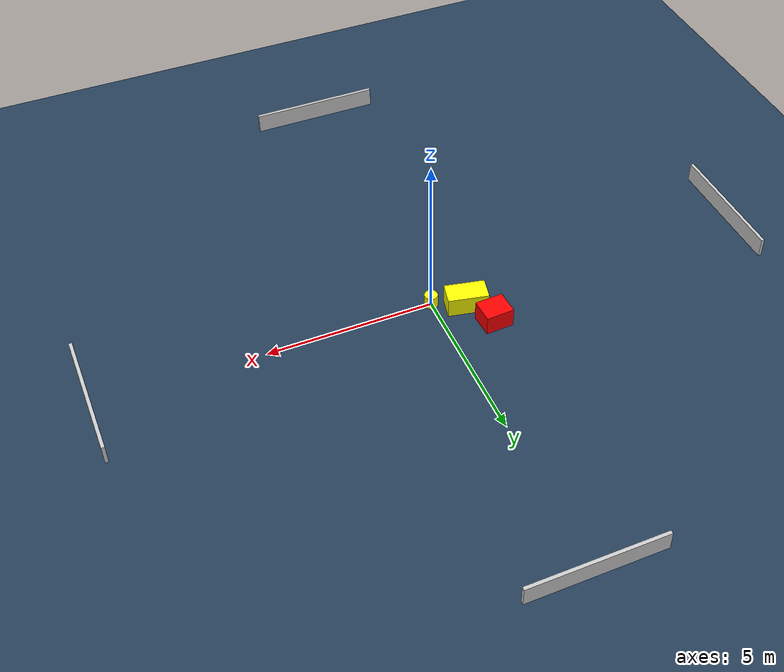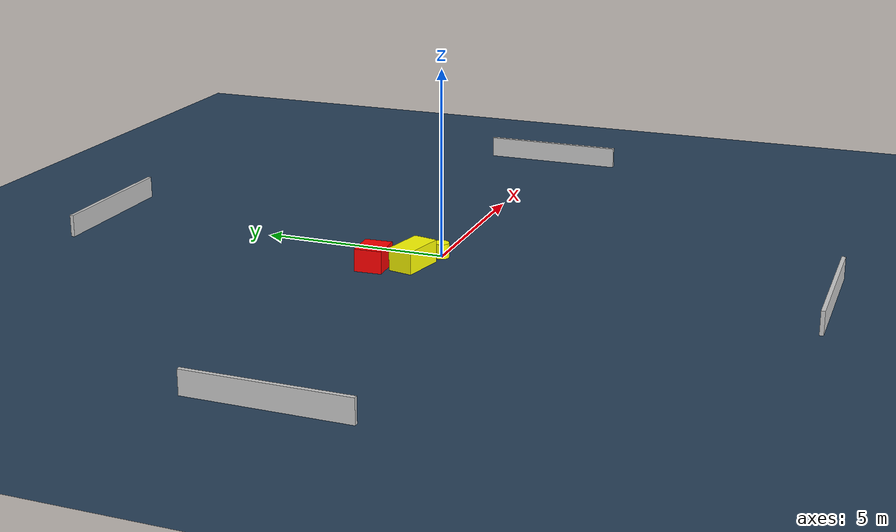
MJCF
<?xml version="1.0" ?>
<mujoco model="generated_environment">
  <option timestep="0.01" integrator="RK4" cone="elliptic"/>
  <default>
    <geom density="1"/>
  </default>
  <asset>
    <texture builtin="gradient" height="3072" name="skybox" rgb1="0.3 0.5 0.7" rgb2="0 0 0" type="skybox" width="512"/>
    <texture builtin="checker" height="300" name="groundplane" rgb1="0.2 0.3 0.4" rgb2="0.1 0.2 0.3" type="2d" width="300"/>
    <material name="groundplane" reflectance="0.2" texrepeat="5 5" texture="groundplane"/>
  </asset>
  <worldbody>
    <light dir="0 0 -1" directional="true" pos="0 0 1.5"/>
    <geom condim="3" friction="0.5 0.005 0.001" material="groundplane" name="floor" pos="0 0 0" size="0 0 0.05" type="plane"/>
    <body name="walls">
      <geom name="wall_1" condim="4" pos="-10.0 0.0 0.3" rgba="0.800000011920929 0.800000011920929 0.800000011920929 1.0" size="0.05 2.0 0.3" type="box"/>
      <geom name="wall_2" condim="4" pos="10.0 0.0 0.3" rgba="0.800000011920929 0.800000011920929 0.800000011920929 1.0" size="0.05 2.0 0.3" type="box"/>
      <geom name="wall_3" condim="4" pos="0.0 -10.0 0.3" rgba="0.800000011920929 0.800000011920929 0.800000011920929 1.0" size="2.0 0.05 0.3" type="box"/>
      <geom name="wall_4" condim="4" pos="0.0 10.0 0.3" rgba="0.800000011920929 0.800000011920929 0.800000011920929 1.0" size="2.0 0.05 0.3" type="box"/>
    </body>
    <body name="robot">
      <joint name="joint_x" type="slide" pos="0 0 0" axis="1 0 0"/>
      <joint name="joint_y" type="slide" pos="0 0 0" axis="0 1 0"/>
      <geom name="robot" type="cylinder" pos="0.0 0.0 0.2" size="0.2 0.2 0.0" mass="5.0" friction="1.0 0.005 0.0001" condim="4" rgba="1.0 1.0 0.0 1.0"/>
    </body>
    <body name="obstacle_1_movable">
      <geom name="obstacle_1_movable" condim="4" pos="-0.9180728649490143 0.44211826030888157 0.3" euler="0 0 347.9239308161212" friction="0.0 0.005 0.001" rgba="1.0 1.0 0.0 1.0" size="0.6035271740128578 0.33208744115991773 0.3" type="box" mass="0.1"/>
      <joint type="free"/>
    </body>
    <body name="obstacle_2_static">
      <geom name="obstacle_2_static" condim="4" pos="-1.3892480624168457 1.3431173080433365 0.3" euler="0 0 92.81930248192762" friction="0.0 0.005 0.001" rgba="1.0 0.0 0.0 1.0" size="0.36626876522292706 0.42421795998469314 0.3" type="box"/>
    </body>
  </worldbody>
  <actuator>
    <motor name="actuator_x" joint="joint_x" gear="1" ctrlrange="-1 1"/>
    <motor name="actuator_y" joint="joint_y" gear="1" ctrlrange="-1 1"/>
  </actuator>
</mujoco>
